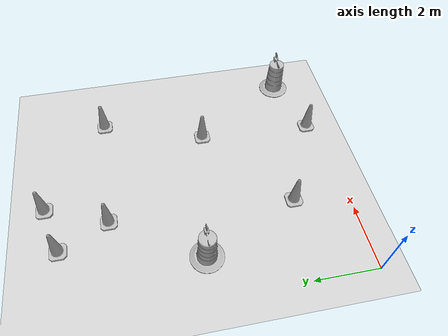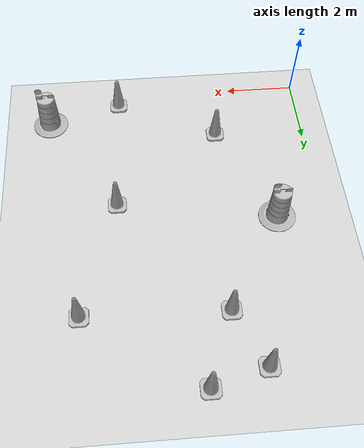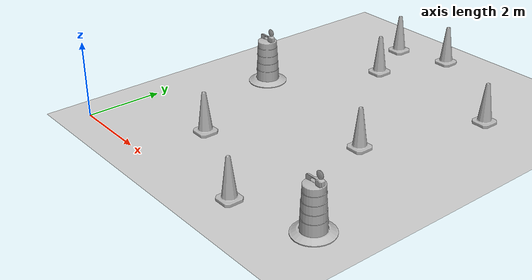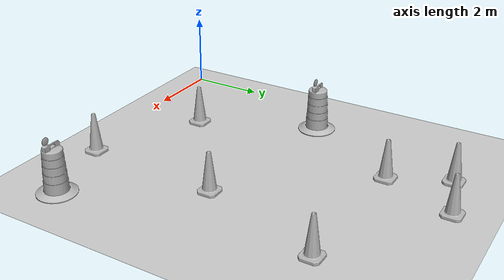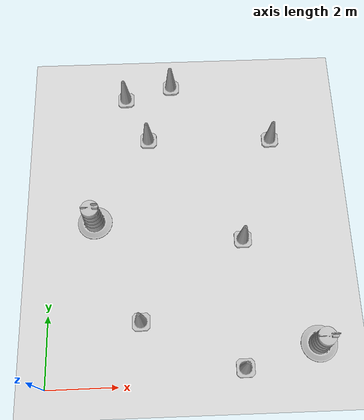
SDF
<sdf version="1.7">
 <world name="default">
  <light name="sun" type="directional">
   <pose>0 0 10 0 -0 0</pose>
   <diffuse>0.8 0.8 0.8 1</diffuse>
   <specular>0.2 0.2 0.2 1</specular>
   <attenuation>
    <range>1000</range>
    <constant>0.9</constant>
    <linear>0.01</linear>
    <quadratic>0.001</quadratic>
   </attenuation>
   <direction>-0.5 0.1 -0.9</direction>
   <spot><inner_angle>0</inner_angle><outer_angle>0</outer_angle><falloff>0</falloff></spot>
  </light>
  <model name="ground_plane">
   <static>1</static>
   <link name="link">
    <collision name="collision">
     <geometry><plane><normal>0 0 1</normal><size>100 100</size></plane></geometry>
     <surface><friction><ode><mu>100</mu><mu2>50</mu2></ode></friction></surface>
    </collision>
    <visual name="visual">
     <cast_shadows>0</cast_shadows>
     <geometry><plane><normal>0 0 1</normal><size>100 100</size></plane></geometry>
     <material>
      <script><uri>file://media/materials/scripts/gazebo.material</uri><name>Gazebo/Grey</name></script>
     </material>
    </visual>
   </link>
  </model>
  <gravity>0 0 -9.8</gravity>
  <magnetic_field>6e-06 2.3e-05 -4.2e-05</magnetic_field>
  <atmosphere type="adiabatic"/>
  <physics type="ode">
   <max_step_size>0.001</max_step_size>
   <real_time_factor>1</real_time_factor>
   <real_time_update_rate>1000</real_time_update_rate>
  </physics>
  <scene><ambient>0.4 0.4 0.4 1</ambient><background>0.7 0.7 0.7 1</background><shadows>1</shadows></scene>
  <spherical_coordinates>
   <surface_model>EARTH_WGS84</surface_model>
   <latitude_deg>0</latitude_deg>
   <longitude_deg>0</longitude_deg>
   <elevation>0</elevation>
   <heading_deg>0</heading_deg>
  </spherical_coordinates>
  <model name="Construction Barrel">
   <link name="link">
    <inertial>
     <pose>0 0 0.4 0 -0 0</pose>
     <mass>500</mass>
     <inertia><ixx>51.2096</ixx><iyy>51.2096</iyy><izz>25</izz><ixy>0</ixy><ixz>0</ixz><iyz>0</iyz></inertia>
    </inertial>
    <collision name="collision">
     <geometry><mesh><uri>model://construction_barrel/meshes/construction_barrel.dae</uri></mesh></geometry>
    </collision>
    <visual name="visual">
     <geometry><mesh><uri>model://construction_barrel/meshes/construction_barrel.dae</uri></mesh></geometry>
    </visual>
   </link>
   <pose>1.25479 4.76785 0 0 0 -1.8e-05</pose>
  </model>
  <model name="Construction Cone">
   <link name="link">
    <collision name="collision">
     <geometry>
      <mesh><scale>10 10 10</scale><uri>model://construction_cone/meshes/construction_cone.dae</uri></mesh>
     </geometry>
    </collision>
    <visual name="visual">
     <geometry>
      <mesh><scale>10 10 10</scale><uri>model://construction_cone/meshes/construction_cone.dae</uri></mesh>
     </geometry>
    </visual>
    <inertial>
     <inertia><ixx>1</ixx><ixy>0</ixy><ixz>0</ixz><iyy>1</iyy><iyz>0</iyz><izz>1</izz></inertia>
     <mass>1</mass>
    </inertial>
   </link>
   <pose>2.60842 1.74495 -0 0 -1e-06 0</pose>
  </model>
  <model name="Construction Cone_0">
   <link name="link">
    <collision name="collision">
     <geometry>
      <mesh><scale>10 10 10</scale><uri>model://construction_cone/meshes/construction_cone.dae</uri></mesh>
     </geometry>
    </collision>
    <visual name="visual">
     <geometry>
      <mesh><scale>10 10 10</scale><uri>model://construction_cone/meshes/construction_cone.dae</uri></mesh>
     </geometry>
    </visual>
    <inertial>
     <inertia><ixx>1</ixx><ixy>0</ixy><ixz>0</ixz><iyy>1</iyy><iyz>0</iyz><izz>1</izz></inertia>
     <mass>1</mass>
    </inertial>
   </link>
   <pose>5.44156 0.386834 -0 0 -0 0</pose>
  </model>
  <model name="Construction Cone_1">
   <link name="link">
    <collision name="collision">
     <geometry>
      <mesh><scale>10 10 10</scale><uri>model://construction_cone/meshes/construction_cone.dae</uri></mesh>
     </geometry>
    </collision>
    <visual name="visual">
     <geometry>
      <mesh><scale>10 10 10</scale><uri>model://construction_cone/meshes/construction_cone.dae</uri></mesh>
     </geometry>
    </visual>
    <inertial>
     <inertia><ixx>1</ixx><ixy>0</ixy><ixz>0</ixz><iyy>1</iyy><iyz>0</iyz><izz>1</izz></inertia>
     <mass>1</mass>
    </inertial>
   </link>
   <pose>2.169 8.96898 -0 0 -0 0</pose>
  </model>
  <model name="Construction Cone_2">
   <link name="link">
    <collision name="collision">
     <geometry>
      <mesh><scale>10 10 10</scale><uri>model://construction_cone/meshes/construction_cone.dae</uri></mesh>
     </geometry>
    </collision>
    <visual name="visual">
     <geometry>
      <mesh><scale>10 10 10</scale><uri>model://construction_cone/meshes/construction_cone.dae</uri></mesh>
     </geometry>
    </visual>
    <inertial>
     <inertia><ixx>1</ixx><ixy>0</ixy><ixz>0</ixz><iyy>1</iyy><iyz>0</iyz><izz>1</izz></inertia>
     <mass>1</mass>
    </inertial>
   </link>
   <pose>2.86925 7.46495 -0 0 -1e-06 0</pose>
  </model>
  <model name="Construction Cone_3">
   <link name="link">
    <collision name="collision">
     <geometry>
      <mesh><scale>10 10 10</scale><uri>model://construction_cone/meshes/construction_cone.dae</uri></mesh>
     </geometry>
    </collision>
    <visual name="visual">
     <geometry>
      <mesh><scale>10 10 10</scale><uri>model://construction_cone/meshes/construction_cone.dae</uri></mesh>
     </geometry>
    </visual>
    <inertial>
     <inertia><ixx>1</ixx><ixy>0</ixy><ixz>0</ixz><iyy>1</iyy><iyz>0</iyz><izz>1</izz></inertia>
     <mass>1</mass>
    </inertial>
   </link>
   <pose>5.61021 4.08605 -0 0 -0 0</pose>
  </model>
  <model name="Construction Barrel_0">
   <link name="link">
    <inertial>
     <pose>0 0 0.4 0 -0 0</pose>
     <mass>500</mass>
     <inertia><ixx>51.2096</ixx><iyy>51.2096</iyy><izz>25</izz><ixy>0</ixy><ixz>0</ixz><iyz>0</iyz></inertia>
    </inertial>
    <collision name="collision">
     <geometry><mesh><uri>model://construction_barrel/meshes/construction_barrel.dae</uri></mesh></geometry>
    </collision>
    <visual name="visual">
     <geometry><mesh><uri>model://construction_barrel/meshes/construction_barrel.dae</uri></mesh></geometry>
    </visual>
   </link>
   <pose>7.5183 0.979043 -2e-06 7e-06 -4e-06 -8e-06</pose>
  </model>
  <model name="Construction Cone_4">
   <link name="link">
    <collision name="collision">
     <geometry>
      <mesh><scale>10 10 10</scale><uri>model://construction_cone/meshes/construction_cone.dae</uri></mesh>
     </geometry>
    </collision>
    <visual name="visual">
     <geometry>
      <mesh><scale>10 10 10</scale><uri>model://construction_cone/meshes/construction_cone.dae</uri></mesh>
     </geometry>
    </visual>
    <inertial>
     <inertia><ixx>1</ixx><ixy>0</ixy><ixz>0</ixz><iyy>1</iyy><iyz>0</iyz><izz>1</izz></inertia>
     <mass>1</mass>
    </inertial>
   </link>
   <pose>3.61847 9.38618 -0 0 -0 0</pose>
  </model>
  <model name="Construction Cone_5">
   <link name="link">
    <collision name="collision">
     <geometry>
      <mesh><scale>10 10 10</scale><uri>model://construction_cone/meshes/construction_cone.dae</uri></mesh>
     </geometry>
    </collision>
    <visual name="visual">
     <geometry>
      <mesh><scale>10 10 10</scale><uri>model://construction_cone/meshes/construction_cone.dae</uri></mesh>
     </geometry>
    </visual>
    <inertial>
     <inertia><ixx>1</ixx><ixy>0</ixy><ixz>0</ixz><iyy>1</iyy><iyz>0</iyz><izz>1</izz></inertia>
     <mass>1</mass>
    </inertial>
   </link>
   <pose>6.67766 7.36837 -0 0 -0 0</pose>
  </model>
 </world>
</sdf>
